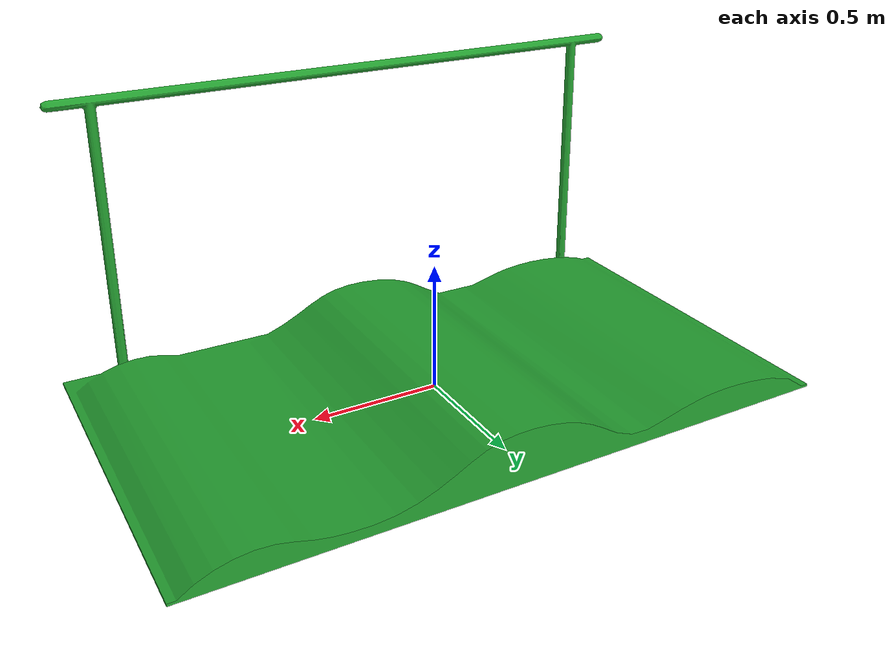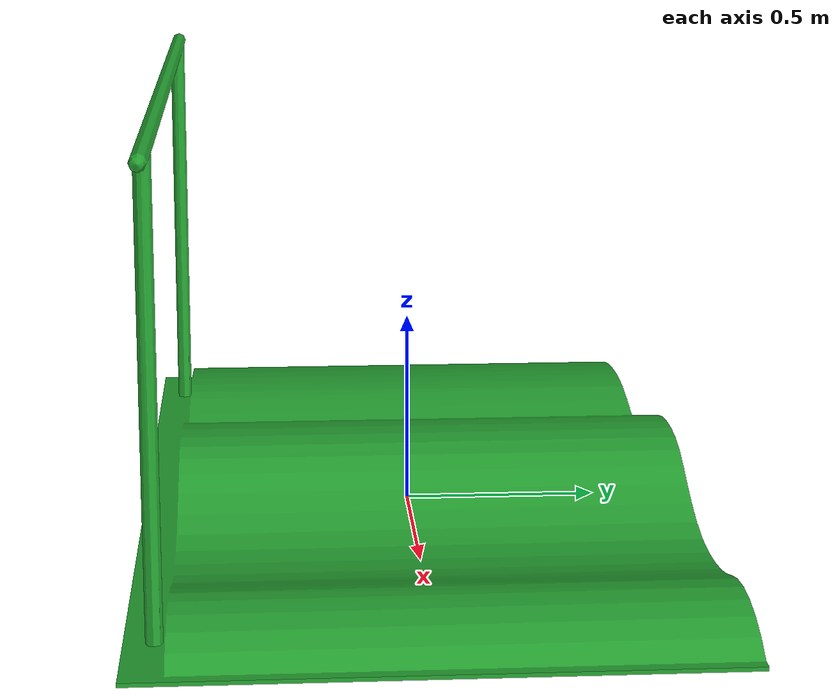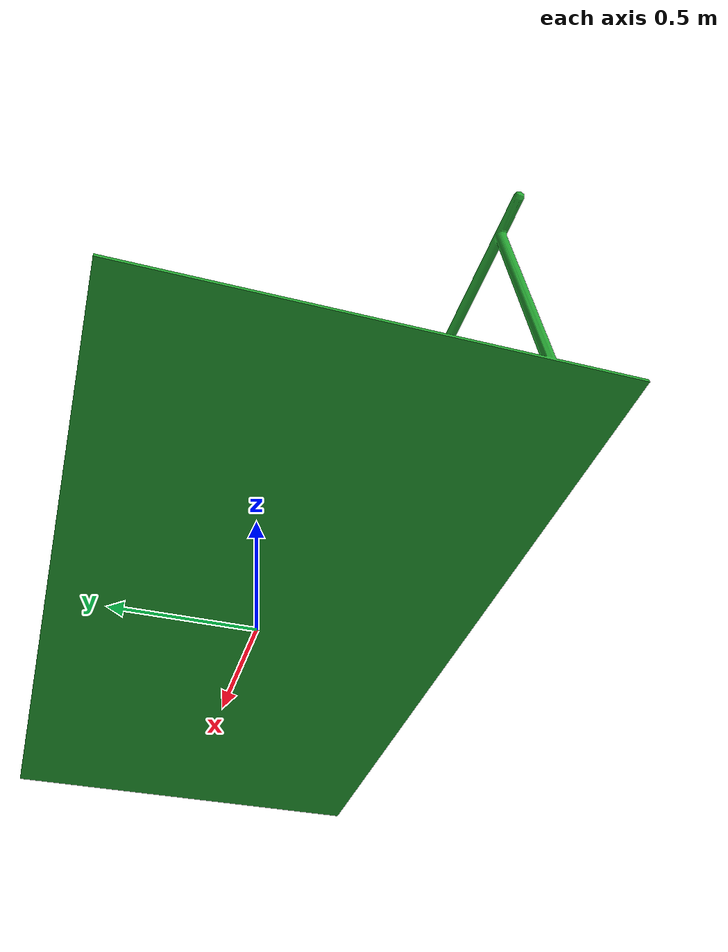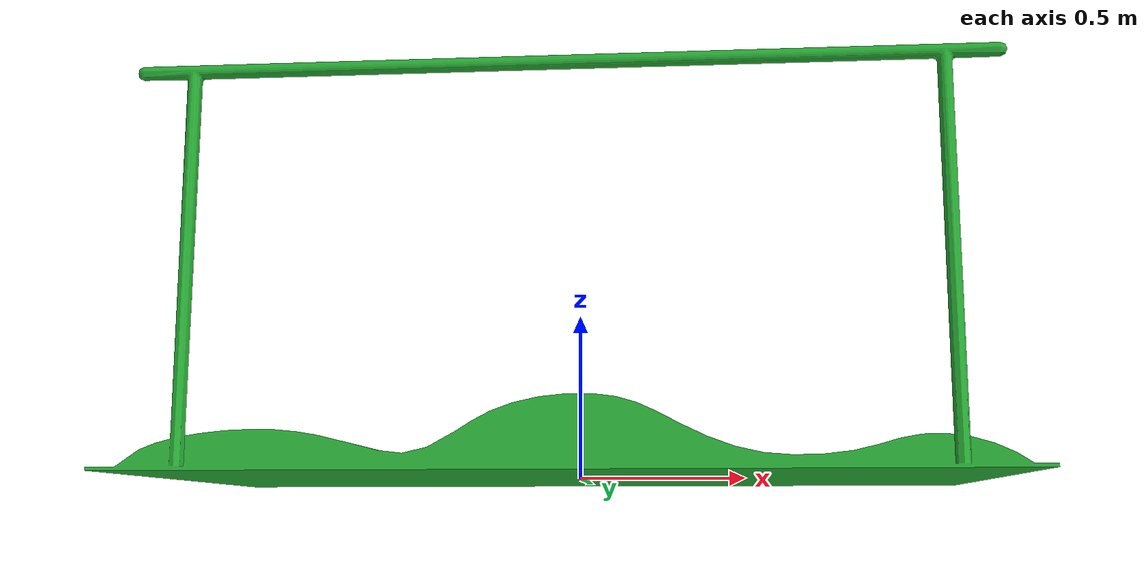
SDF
<?xml version="1.0" ?>
<sdf version="1.6">
  <model name="obstacle">
    <static>true</static>
    <pose frame=''>0. 0. 0. 1.57 0. 0.</pose>
    <link name="link">
      <collision name="collision">
        <geometry>
          <mesh>
            <uri>model://obstacle/meshes/obstacle.stl</uri>
            <scale>0.001 0.001 0.001</scale>
          </mesh>
        </geometry>
      </collision>
      <visual name="visual">
        <geometry>
          <mesh>
            <uri>model://obstacle/meshes/obstacle.stl</uri>
            <scale>0.001 0.001 0.001</scale>
          </mesh>
        </geometry>
       <material>
          <script>
            <name>Gazebo/Green</name>
            <uri>file://media/materials/scripts/gazebo.material</uri>
          </script>
        </material>
      </visual>
    </link>
  </model>
</sdf>
